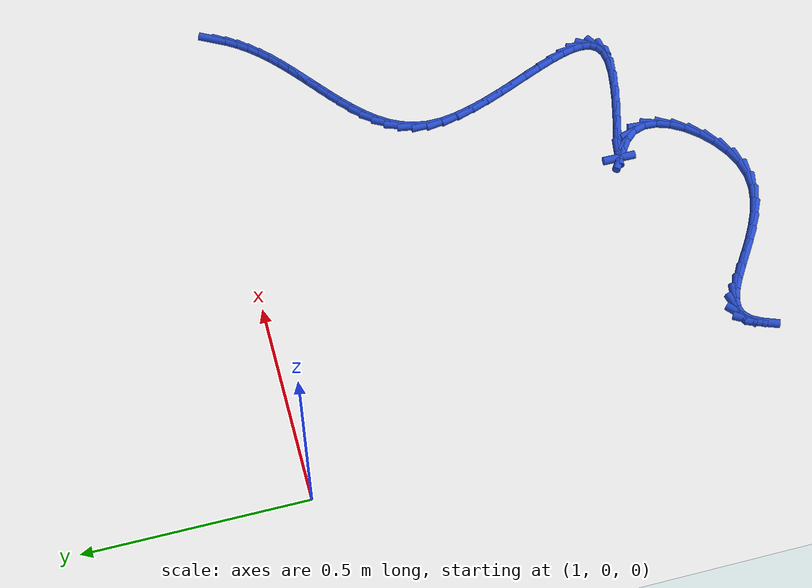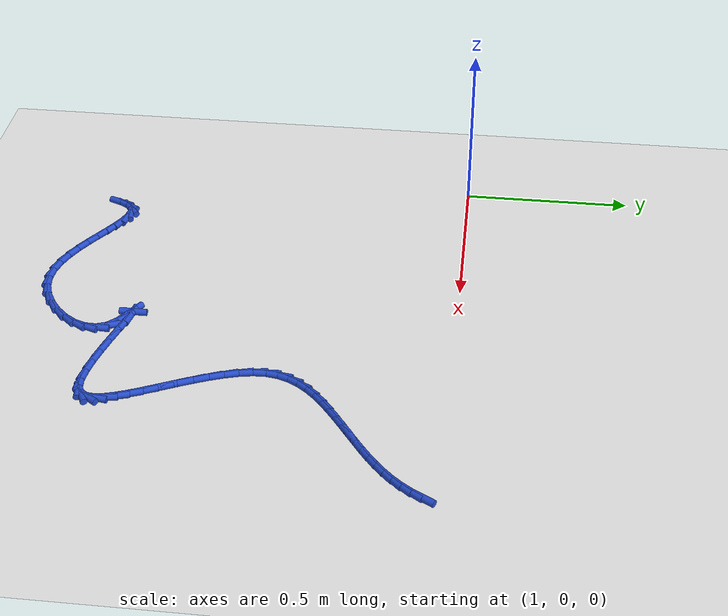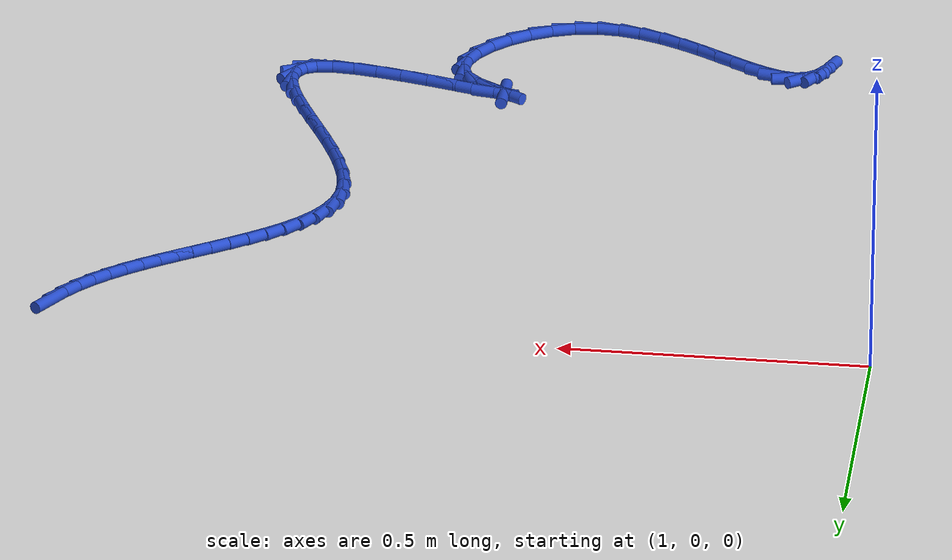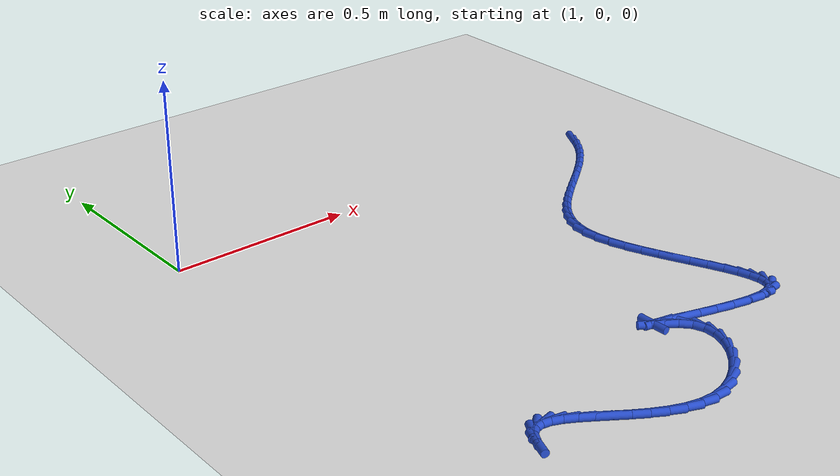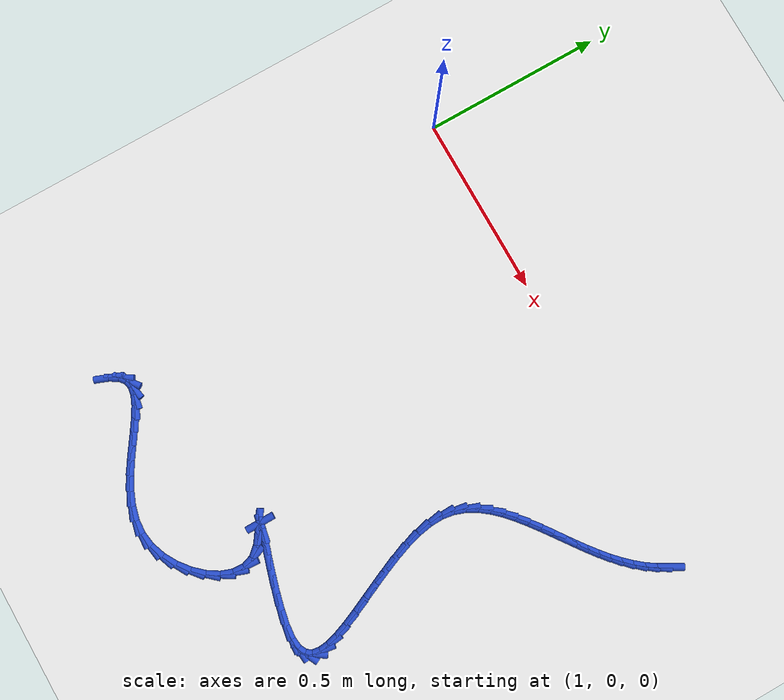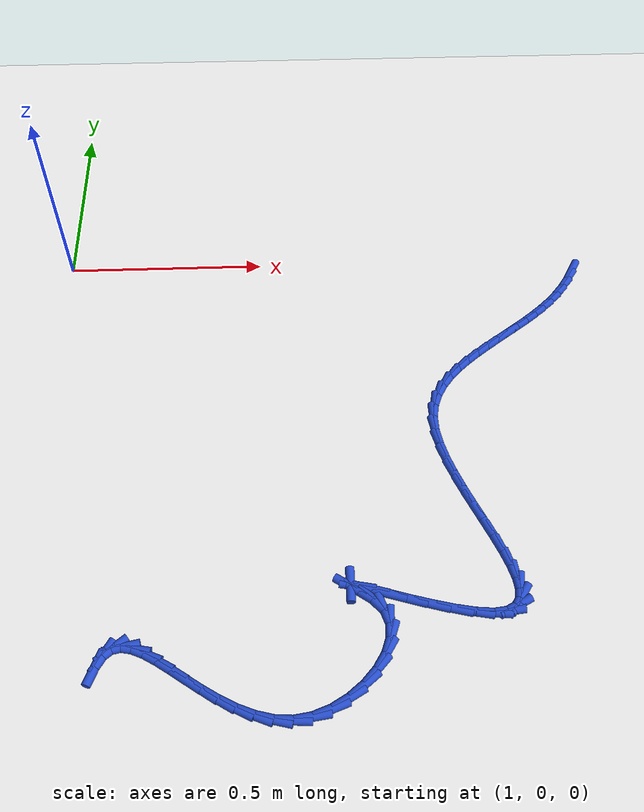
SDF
<sdf version="1.6">
 <world name="default">
  <model name="ground_plane">
   <static>1</static>
   <link name="link">
    <collision name="collision">
     <geometry><plane><normal>0 0 1</normal><size>100 100</size></plane></geometry>
     <surface><friction><ode><mu>100</mu><mu2>50</mu2></ode></friction></surface>
    </collision>
    <visual name="visual">
     <cast_shadows>0</cast_shadows>
     <geometry><plane><normal>0 0 1</normal><size>100 100</size></plane></geometry>
     <material>
      <script><uri>file://media/materials/scripts/gazebo.material</uri><name>Gazebo/WhiteGlow</name></script>
     </material>
    </visual>
   </link>
  </model>
  <model name="line">
   <link name="link_139">
    <pose>2.3235083277884403 -0.05241808262936048 0.01 0 1.57 1.0608913689887651</pose>
    <collision name="collision">
     <geometry><cylinder><radius>0.01</radius><length>0.08</length></cylinder></geometry>
    </collision>
    <visual name="visual">
     <material>
      <script><name>Gazebo/Blue</name><uri>file://media/materials/scripts/gazebo.material</uri></script>
     </material>
     <geometry><cylinder><radius>0.01</radius><length>0.08</length></cylinder></geometry>
    </visual>
   </link>
   <link name="link_140">
    <pose>2.307607664986563 -0.08085101843154464 0.01 0 1.57 0.9687450672664327</pose>
    <collision name="collision">
     <geometry><cylinder><radius>0.01</radius><length>0.08</length></cylinder></geometry>
    </collision>
    <visual name="visual">
     <material>
      <script><name>Gazebo/Blue</name><uri>file://media/materials/scripts/gazebo.material</uri></script>
     </material>
     <geometry><cylinder><radius>0.01</radius><length>0.08</length></cylinder></geometry>
    </visual>
   </link>
   <link name="link_141">
    <pose>2.2895218974615594 -0.10717089739696319 0.01 0 1.57 0.8851869438819983</pose>
    <collision name="collision">
     <geometry><cylinder><radius>0.01</radius><length>0.08</length></cylinder></geometry>
    </collision>
    <visual name="visual">
     <material>
      <script><name>Gazebo/Blue</name><uri>file://media/materials/scripts/gazebo.material</uri></script>
     </material>
     <geometry><cylinder><radius>0.01</radius><length>0.08</length></cylinder></geometry>
    </visual>
   </link>
   <link name="link_142">
    <pose>2.269491799629104 -0.131658129547973 0.01 0 1.57 0.812286196404394</pose>
    <collision name="collision">
     <geometry><cylinder><radius>0.01</radius><length>0.08</length></cylinder></geometry>
    </collision>
    <visual name="visual">
     <material>
      <script><name>Gazebo/Blue</name><uri>file://media/materials/scripts/gazebo.material</uri></script>
     </material>
     <geometry><cylinder><radius>0.01</radius><length>0.08</length></cylinder></geometry>
    </visual>
   </link>
   <link name="link_143">
    <pose>2.2477581459048723 -0.15459312490693053 0.01 0 1.57 0.7512322360215811</pose>
    <collision name="collision">
     <geometry><cylinder><radius>0.01</radius><length>0.08</length></cylinder></geometry>
    </collision>
    <visual name="visual">
     <material>
      <script><name>Gazebo/Blue</name><uri>file://media/materials/scripts/gazebo.material</uri></script>
     </material>
     <geometry><cylinder><radius>0.01</radius><length>0.08</length></cylinder></geometry>
    </visual>
   </link>
   <link name="link_144">
    <pose>2.2245617107045397 -0.1762562934961922 0.01 0 1.57 0.7024953715874301</pose>
    <collision name="collision">
     <geometry><cylinder><radius>0.01</radius><length>0.08</length></cylinder></geometry>
    </collision>
    <visual name="visual">
     <material>
      <script><name>Gazebo/Blue</name><uri>file://media/materials/scripts/gazebo.material</uri></script>
     </material>
     <geometry><cylinder><radius>0.01</radius><length>0.08</length></cylinder></geometry>
    </visual>
   </link>
   <link name="link_145">
    <pose>2.2001432684437803 -0.19692804533811437 0.01 0 1.57 0.6660631370489545</pose>
    <collision name="collision">
     <geometry><cylinder><radius>0.01</radius><length>0.08</length></cylinder></geometry>
    </collision>
    <visual name="visual">
     <material>
      <script><name>Gazebo/Blue</name><uri>file://media/materials/scripts/gazebo.material</uri></script>
     </material>
     <geometry><cylinder><radius>0.01</radius><length>0.08</length></cylinder></geometry>
    </visual>
   </link>
   <link name="link_146">
    <pose>2.1747435935382686 -0.21688879045505405 0.01 0 1.57 0.6416635138665876</pose>
    <collision name="collision">
     <geometry><cylinder><radius>0.01</radius><length>0.08</length></cylinder></geometry>
    </collision>
    <visual name="visual">
     <material>
      <script><name>Gazebo/Blue</name><uri>file://media/materials/scripts/gazebo.material</uri></script>
     </material>
     <geometry><cylinder><radius>0.01</radius><length>0.08</length></cylinder></geometry>
    </visual>
   </link>
   <link name="link_147">
    <pose>2.148603460403681 -0.2364189388693664 0.01 0 1.57 0.6289325205838758</pose>
    <collision name="collision">
     <geometry><cylinder><radius>0.01</radius><length>0.08</length></cylinder></geometry>
    </collision>
    <visual name="visual">
     <material>
      <script><name>Gazebo/Blue</name><uri>file://media/materials/scripts/gazebo.material</uri></script>
     </material>
     <geometry><cylinder><radius>0.01</radius><length>0.08</length></cylinder></geometry>
    </visual>
   </link>
   <link name="link_148">
    <pose>2.121963643455692 -0.2557989006034086 0.01 0 1.57 0.6275179319952621</pose>
    <collision name="collision">
     <geometry><cylinder><radius>0.01</radius><length>0.08</length></cylinder></geometry>
    </collision>
    <visual name="visual">
     <material>
      <script><name>Gazebo/Blue</name><uri>file://media/materials/scripts/gazebo.material</uri></script>
     </material>
     <geometry><cylinder><radius>0.01</radius><length>0.08</length></cylinder></geometry>
    </visual>
   </link>
   <link name="link_149">
    <pose>2.095064917109977 -0.275309085679537 0.01 0 1.57 0.6371265259970232</pose>
    <collision name="collision">
     <geometry><cylinder><radius>0.01</radius><length>0.08</length></cylinder></geometry>
    </collision>
    <visual name="visual">
     <material>
      <script><name>Gazebo/Blue</name><uri>file://media/materials/scripts/gazebo.material</uri></script>
     </material>
     <geometry><cylinder><radius>0.01</radius><length>0.08</length></cylinder></geometry>
    </visual>
   </link>
   <link name="link_150">
    <pose>2.06814805578221 -0.29522990412010786 0.01 0 1.57 0.6575251512200889</pose>
    <collision name="collision">
     <geometry><cylinder><radius>0.01</radius><length>0.08</length></cylinder></geometry>
    </collision>
    <visual name="visual">
     <material>
      <script><name>Gazebo/Blue</name><uri>file://media/materials/scripts/gazebo.material</uri></script>
     </material>
     <geometry><cylinder><radius>0.01</radius><length>0.08</length></cylinder></geometry>
    </visual>
   </link>
   <link name="link_151">
    <pose>2.0414538345121533 -0.3158417659408752 0.01 0 1.57 0.6905183868258894</pose>
    <collision name="collision">
     <geometry><cylinder><radius>0.01</radius><length>0.08</length></cylinder></geometry>
    </collision>
    <visual name="visual">
     <material>
      <script><name>Gazebo/Blue</name><uri>file://media/materials/scripts/gazebo.material</uri></script>
     </material>
     <geometry><cylinder><radius>0.01</radius><length>0.08</length></cylinder></geometry>
    </visual>
   </link>
   <link name="link_152">
    <pose>2.0153318845316086 -0.337423929462068 0.01 0 1.57 0.7442492436190512</pose>
    <collision name="collision">
     <geometry><cylinder><radius>0.01</radius><length>0.08</length></cylinder></geometry>
    </collision>
    <visual name="visual">
     <material>
      <script><name>Gazebo/Blue</name><uri>file://media/materials/scripts/gazebo.material</uri></script>
     </material>
     <geometry><cylinder><radius>0.01</radius><length>0.08</length></cylinder></geometry>
    </visual>
   </link>
   <link name="link_153">
    <pose>1.990544104511512 -0.3602512912257257 0.01 0 1.57 0.82271092702796</pose>
    <collision name="collision">
     <geometry><cylinder><radius>0.01</radius><length>0.08</length></cylinder></geometry>
    </collision>
    <visual name="visual">
     <material>
      <script><name>Gazebo/Blue</name><uri>file://media/materials/scripts/gazebo.material</uri></script>
     </material>
     <geometry><cylinder><radius>0.01</radius><length>0.08</length></cylinder></geometry>
    </visual>
   </link>
   <link name="link_154">
    <pose>1.967949975430083 -0.3845977153557548 0.01 0 1.57 0.9288521636080752</pose>
    <collision name="collision">
     <geometry><cylinder><radius>0.01</radius><length>0.08</length></cylinder></geometry>
    </collision>
    <visual name="visual">
     <material>
      <script><name>Gazebo/Blue</name><uri>file://media/materials/scripts/gazebo.material</uri></script>
     </material>
     <geometry><cylinder><radius>0.01</radius><length>0.08</length></cylinder></geometry>
    </visual>
   </link>
   <link name="link_155">
    <pose>1.94840897826554 -0.4107370659760622 0.01 0 1.57 1.0648280957791896</pose>
    <collision name="collision">
     <geometry><cylinder><radius>0.01</radius><length>0.08</length></cylinder></geometry>
    </collision>
    <visual name="visual">
     <material>
      <script><name>Gazebo/Blue</name><uri>file://media/materials/scripts/gazebo.material</uri></script>
     </material>
     <geometry><cylinder><radius>0.01</radius><length>0.08</length></cylinder></geometry>
    </visual>
   </link>
   <link name="link_156">
    <pose>1.9327805939961058 -0.438943207210553 0.01 0 1.57 1.2293201288129159</pose>
    <collision name="collision">
     <geometry><cylinder><radius>0.01</radius><length>0.08</length></cylinder></geometry>
    </collision>
    <visual name="visual">
     <material>
      <script><name>Gazebo/Blue</name><uri>file://media/materials/scripts/gazebo.material</uri></script>
     </material>
     <geometry><cylinder><radius>0.01</radius><length>0.08</length></cylinder></geometry>
    </visual>
   </link>
   <link name="link_157">
    <pose>1.9219243035999978 -0.46949000318313405 0.01 0 1.57 1.4145263936888954</pose>
    <collision name="collision">
     <geometry><cylinder><radius>0.01</radius><length>0.08</length></cylinder></geometry>
    </collision>
    <visual name="visual">
     <material>
      <script><name>Gazebo/Blue</name><uri>file://media/materials/scripts/gazebo.material</uri></script>
     </material>
     <geometry><cylinder><radius>0.01</radius><length>0.08</length></cylinder></geometry>
    </visual>
   </link>
   <link name="link_158">
    <pose>1.916699588055437 -0.502651318017712 0.01 0 1.57 -1.542016384939773</pose>
    <collision name="collision">
     <geometry><cylinder><radius>0.01</radius><length>0.08</length></cylinder></geometry>
    </collision>
    <visual name="visual">
     <material>
      <script><name>Gazebo/Blue</name><uri>file://media/materials/scripts/gazebo.material</uri></script>
     </material>
     <geometry><cylinder><radius>0.01</radius><length>0.08</length></cylinder></geometry>
    </visual>
   </link>
   <link name="link_159">
    <pose>1.9177342259457821 -0.5385913564448346 0.01 0 1.57 -1.3988994695609915</pose>
    <collision name="collision">
     <geometry><cylinder><radius>0.01</radius><length>0.08</length></cylinder></geometry>
    </collision>
    <visual name="visual">
     <material>
      <script><name>Gazebo/Blue</name><uri>file://media/materials/scripts/gazebo.material</uri></script>
     </material>
     <geometry><cylinder><radius>0.01</radius><length>0.08</length></cylinder></geometry>
    </visual>
   </link>
   <link name="link_160">
    <pose>1.9243798506249514 -0.5768703531248157 0.01 0 1.57 -1.2982686605355178</pose>
    <collision name="collision">
     <geometry><cylinder><radius>0.01</radius><length>0.08</length></cylinder></geometry>
    </collision>
    <visual name="visual">
     <material>
      <script><name>Gazebo/Blue</name><uri>file://media/materials/scripts/gazebo.material</uri></script>
     </material>
     <geometry><cylinder><radius>0.01</radius><length>0.08</length></cylinder></geometry>
    </visual>
   </link>
   <link name="link_161">
    <pose>1.9355511020628329 -0.6168417238397125 0.01 0 1.57 -1.2285896845688</pose>
    <collision name="collision">
     <geometry><cylinder><radius>0.01</radius><length>0.08</length></cylinder></geometry>
    </collision>
    <visual name="visual">
     <material>
      <script><name>Gazebo/Blue</name><uri>file://media/materials/scripts/gazebo.material</uri></script>
     </material>
     <geometry><cylinder><radius>0.01</radius><length>0.08</length></cylinder></geometry>
    </visual>
   </link>
   <link name="link_162">
    <pose>1.950162234839072 -0.6578587019752793 0.01 0 1.57 -1.182013682770999</pose>
    <collision name="collision">
     <geometry><cylinder><radius>0.01</radius><length>0.08</length></cylinder></geometry>
    </collision>
    <visual name="visual">
     <material>
      <script><name>Gazebo/Blue</name><uri>file://media/materials/scripts/gazebo.material</uri></script>
     </material>
     <geometry><cylinder><radius>0.01</radius><length>0.08</length></cylinder></geometry>
    </visual>
   </link>
   <link name="link_163">
    <pose>1.9671275035333118 -0.69927452091727 0.01 0 1.57 -1.1538543177570952</pose>
    <collision name="collision">
     <geometry><cylinder><radius>0.01</radius><length>0.08</length></cylinder></geometry>
    </collision>
    <visual name="visual">
     <material>
      <script><name>Gazebo/Blue</name><uri>file://media/materials/scripts/gazebo.material</uri></script>
     </material>
     <geometry><cylinder><radius>0.01</radius><length>0.08</length></cylinder></geometry>
    </visual>
   </link>
   <link name="link_164">
    <pose>1.9853611627251975 -0.7404424140514398 0.01 0 1.57 -1.1419012735611156</pose>
    <collision name="collision">
     <geometry><cylinder><radius>0.01</radius><length>0.08</length></cylinder></geometry>
    </collision>
    <visual name="visual">
     <material>
      <script><name>Gazebo/Blue</name><uri>file://media/materials/scripts/gazebo.material</uri></script>
     </material>
     <geometry><cylinder><radius>0.01</radius><length>0.08</length></cylinder></geometry>
    </visual>
   </link>
   <link name="link_165">
    <pose>2.0037774669943724 -0.7807156147635402 0.01 0 1.57 -1.1461420305665937</pose>
    <collision name="collision">
     <geometry><cylinder><radius>0.01</radius><length>0.08</length></cylinder></geometry>
    </collision>
    <visual name="visual">
     <material>
      <script><name>Gazebo/Blue</name><uri>file://media/materials/scripts/gazebo.material</uri></script>
     </material>
     <geometry><cylinder><radius>0.01</radius><length>0.08</length></cylinder></geometry>
    </visual>
   </link>
   <link name="link_166">
    <pose>2.021290670920482 -0.8194473564393265 0.01 0 1.57 -1.1690795026625806</pose>
    <collision name="collision">
     <geometry><cylinder><radius>0.01</radius><length>0.08</length></cylinder></geometry>
    </collision>
    <visual name="visual">
     <material>
      <script><name>Gazebo/Blue</name><uri>file://media/materials/scripts/gazebo.material</uri></script>
     </material>
     <geometry><cylinder><radius>0.01</radius><length>0.08</length></cylinder></geometry>
    </visual>
   </link>
   <link name="link_167">
    <pose>2.0368150290831695 -0.8559908724645524 0.01 0 1.57 -1.2170006918001388</pose>
    <collision name="collision">
     <geometry><cylinder><radius>0.01</radius><length>0.08</length></cylinder></geometry>
    </collision>
    <visual name="visual">
     <material>
      <script><name>Gazebo/Blue</name><uri>file://media/materials/scripts/gazebo.material</uri></script>
     </material>
     <geometry><cylinder><radius>0.01</radius><length>0.08</length></cylinder></geometry>
    </visual>
   </link>
   <link name="link_168">
    <pose>2.04926479606208 -0.8896993962249723 0.01 0 1.57 -1.3031355152336337</pose>
    <collision name="collision">
     <geometry><cylinder><radius>0.01</radius><length>0.08</length></cylinder></geometry>
    </collision>
    <visual name="visual">
     <material>
      <script><name>Gazebo/Blue</name><uri>file://media/materials/scripts/gazebo.material</uri></script>
     </material>
     <geometry><cylinder><radius>0.01</radius><length>0.08</length></cylinder></geometry>
    </visual>
   </link>
   <link name="link_169">
    <pose>2.0575542264368574 -0.9199261611063401 0.01 0 1.57 -1.4547093715500155</pose>
    <collision name="collision">
     <geometry><cylinder><radius>0.01</radius><length>0.08</length></cylinder></geometry>
    </collision>
    <visual name="visual">
     <material>
      <script><name>Gazebo/Blue</name><uri>file://media/materials/scripts/gazebo.material</uri></script>
     </material>
     <geometry><cylinder><radius>0.01</radius><length>0.08</length></cylinder></geometry>
    </visual>
   </link>
   <link name="link_170">
    <pose>2.0605975747871463 -0.9460244004944096 0.01 0 1.57 1.417779335416095</pose>
    <collision name="collision">
     <geometry><cylinder><radius>0.01</radius><length>0.08</length></cylinder></geometry>
    </collision>
    <visual name="visual">
     <material>
      <script><name>Gazebo/Blue</name><uri>file://media/materials/scripts/gazebo.material</uri></script>
     </material>
     <geometry><cylinder><radius>0.01</radius><length>0.08</length></cylinder></geometry>
    </visual>
   </link>
   <link name="link_171">
    <pose>2.0573090956925912 -0.9673473477749348 0.01 0 1.57 0.9782161697975983</pose>
    <collision name="collision">
     <geometry><cylinder><radius>0.01</radius><length>0.08</length></cylinder></geometry>
    </collision>
    <visual name="visual">
     <material>
      <script><name>Gazebo/Blue</name><uri>file://media/materials/scripts/gazebo.material</uri></script>
     </material>
     <geometry><cylinder><radius>0.01</radius><length>0.08</length></cylinder></geometry>
    </visual>
   </link>
   <link name="link_172">
    <pose>2.0466030437328366 -0.9832482363336702 0.01 0 1.57 0.4730721719269025</pose>
    <collision name="collision">
     <geometry><cylinder><radius>0.01</radius><length>0.08</length></cylinder></geometry>
    </collision>
    <visual name="visual">
     <material>
      <script><name>Gazebo/Blue</name><uri>file://media/materials/scripts/gazebo.material</uri></script>
     </material>
     <geometry><cylinder><radius>0.01</radius><length>0.08</length></cylinder></geometry>
    </visual>
   </link>
   <link name="link_173">
    <pose>2.0273936734875257 -0.9930802995563695 0.01 0 1.57 0.10846091833959497</pose>
    <collision name="collision">
     <geometry><cylinder><radius>0.01</radius><length>0.08</length></cylinder></geometry>
    </collision>
    <visual name="visual">
     <material>
      <script><name>Gazebo/Blue</name><uri>file://media/materials/scripts/gazebo.material</uri></script>
     </material>
     <geometry><cylinder><radius>0.01</radius><length>0.08</length></cylinder></geometry>
    </visual>
   </link>
   <link name="link_174">
    <pose>1.9986246261651441 -0.9962129102645471 0.01 0 1.57 -0.08772155459176666</pose>
    <collision name="collision">
     <geometry><cylinder><radius>0.01</radius><length>0.08</length></cylinder></geometry>
    </collision>
    <visual name="visual">
     <material>
      <script><name>Gazebo/Blue</name><uri>file://media/materials/scripts/gazebo.material</uri></script>
     </material>
     <geometry><cylinder><radius>0.01</radius><length>0.08</length></cylinder></geometry>
    </visual>
   </link>
   <link name="link_175">
    <pose>1.960830086901908 -0.9928889841990568 0.01 0 1.57 -0.18537828088324979</pose>
    <collision name="collision">
     <geometry><cylinder><radius>0.01</radius><length>0.08</length></cylinder></geometry>
    </collision>
    <visual name="visual">
     <material>
      <script><name>Gazebo/Blue</name><uri>file://media/materials/scripts/gazebo.material</uri></script>
     </material>
     <geometry><cylinder><radius>0.01</radius><length>0.08</length></cylinder></geometry>
    </visual>
   </link>
   <link name="link_176">
    <pose>1.9169151227975132 -0.9846535496143866 0.01 0 1.57 -0.24019058346360495</pose>
    <collision name="collision">
     <geometry><cylinder><radius>0.01</radius><length>0.08</length></cylinder></geometry>
    </collision>
    <visual name="visual">
     <material>
      <script><name>Gazebo/Blue</name><uri>file://media/materials/scripts/gazebo.material</uri></script>
     </material>
     <geometry><cylinder><radius>0.01</radius><length>0.08</length></cylinder></geometry>
    </visual>
   </link>
   <link name="link_177">
    <pose>1.8699780934903545 -0.9731577929952986 0.01 0 1.57 -0.272689812103999</pose>
    <collision name="collision">
     <geometry><cylinder><radius>0.01</radius><length>0.08</length></cylinder></geometry>
    </collision>
    <visual name="visual">
     <material>
      <script><name>Gazebo/Blue</name><uri>file://media/materials/scripts/gazebo.material</uri></script>
     </material>
     <geometry><cylinder><radius>0.01</radius><length>0.08</length></cylinder></geometry>
    </visual>
   </link>
   <link name="link_178">
    <pose>1.823117358618826 -0.9600529008265544 0.01 0 1.57 -0.2905538839794773</pose>
    <collision name="collision">
     <geometry><cylinder><radius>0.01</radius><length>0.08</length></cylinder></geometry>
    </collision>
    <visual name="visual">
     <material>
      <script><name>Gazebo/Blue</name><uri>file://media/materials/scripts/gazebo.material</uri></script>
     </material>
     <geometry><cylinder><radius>0.01</radius><length>0.08</length></cylinder></geometry>
    </visual>
   </link>
   <link name="link_179">
    <pose>1.7794312778213228 -0.9469900595929162 0.01 0 1.57 -0.2950253633241439</pose>
    <collision name="collision">
     <geometry><cylinder><radius>0.01</radius><length>0.08</length></cylinder></geometry>
    </collision>
    <visual name="visual">
     <material>
      <script><name>Gazebo/Blue</name><uri>file://media/materials/scripts/gazebo.material</uri></script>
     </material>
     <geometry><cylinder><radius>0.01</radius><length>0.08</length></cylinder></geometry>
    </visual>
   </link>
   <link name="link_180">
    <pose>1.7420182107362385 -0.9356204557791457 0.01 0 1.57 -0.2787370279432986</pose>
    <collision name="collision">
     <geometry><cylinder><radius>0.01</radius><length>0.08</length></cylinder></geometry>
    </collision>
    <visual name="visual">
     <material>
      <script><name>Gazebo/Blue</name><uri>file://media/materials/scripts/gazebo.material</uri></script>
     </material>
     <geometry><cylinder><radius>0.01</radius><length>0.08</length></cylinder></geometry>
    </visual>
   </link>
   <link name="link_181">
    <pose>1.7139765170019663 -0.9275952758700039 0.01 0 1.57 -0.19215248226104972</pose>
    <collision name="collision">
     <geometry><cylinder><radius>0.01</radius><length>0.08</length></cylinder></geometry>
    </collision>
    <visual name="visual">
     <material>
      <script><name>Gazebo/Blue</name><uri>file://media/materials/scripts/gazebo.material</uri></script>
     </material>
     <geometry><cylinder><radius>0.01</radius><length>0.08</length></cylinder></geometry>
    </visual>
   </link>
   <link name="link_182">
    <pose>1.6984045562569028 -0.9245657063502539 0.01 0 1.57 1.569726967418893</pose>
    <collision name="collision">
     <geometry><cylinder><radius>0.01</radius><length>0.08</length></cylinder></geometry>
    </collision>
    <visual name="visual">
     <material>
      <script><name>Gazebo/Blue</name><uri>file://media/materials/scripts/gazebo.material</uri></script>
     </material>
     <geometry><cylinder><radius>0.01</radius><length>0.08</length></cylinder></geometry>
    </visual>
   </link>
   <link name="link_183">
    <pose>1.6984006881394418 -0.928182933704657 0.01 0 1.57 -0.5798074621000031</pose>
    <collision name="collision">
     <geometry><cylinder><radius>0.01</radius><length>0.08</length></cylinder></geometry>
    </collision>
    <visual name="visual">
     <material>
      <script><name>Gazebo/Blue</name><uri>file://media/materials/scripts/gazebo.material</uri></script>
     </material>
     <geometry><cylinder><radius>0.01</radius><length>0.08</length></cylinder></geometry>
    </visual>
   </link>
   <link name="link_184">
    <pose>1.7164029461744406 -0.9399724918676803 0.01 0 1.57 -0.6056490479947946</pose>
    <collision name="collision">
     <geometry><cylinder><radius>0.01</radius><length>0.08</length></cylinder></geometry>
    </collision>
    <visual name="visual">
     <material>
      <script><name>Gazebo/Blue</name><uri>file://media/materials/scripts/gazebo.material</uri></script>
     </material>
     <geometry><cylinder><radius>0.01</radius><length>0.08</length></cylinder></geometry>
    </visual>
   </link>
   <link name="link_185">
    <pose>1.7446232865579212 -0.9595140085472446 0.01 0 1.57 -0.8357814998733368</pose>
    <collision name="collision">
     <geometry><cylinder><radius>0.01</radius><length>0.08</length></cylinder></geometry>
    </collision>
    <visual name="visual">
     <material>
      <script><name>Gazebo/Blue</name><uri>file://media/materials/scripts/gazebo.material</uri></script>
     </material>
     <geometry><cylinder><radius>0.01</radius><length>0.08</length></cylinder></geometry>
    </visual>
   </link>
   <link name="link_186">
    <pose>1.767538309861744 -0.9848627826890575 0.01 0 1.57 -1.2408474138096923</pose>
    <collision name="collision">
     <geometry><cylinder><radius>0.01</radius><length>0.08</length></cylinder></geometry>
    </collision>
    <visual name="visual">
     <material>
      <script><name>Gazebo/Blue</name><uri>file://media/materials/scripts/gazebo.material</uri></script>
     </material>
     <geometry><cylinder><radius>0.01</radius><length>0.08</length></cylinder></geometry>
    </visual>
   </link>
   <link name="link_187">
    <pose>1.777598800489813 -1.0142392408143004 0.01 0 1.57 1.5199213211936031</pose>
    <collision name="collision">
     <geometry><cylinder><radius>0.01</radius><length>0.08</length></cylinder></geometry>
    </collision>
    <visual name="visual">
     <material>
      <script><name>Gazebo/Blue</name><uri>file://media/materials/scripts/gazebo.material</uri></script>
     </material>
     <geometry><cylinder><radius>0.01</radius><length>0.08</length></cylinder></geometry>
    </visual>
   </link>
   <link name="link_188">
    <pose>1.7759773117262356 -1.0460837498181963 0.01 0 1.57 1.2276034444466328</pose>
    <collision name="collision">
     <geometry><cylinder><radius>0.01</radius><length>0.08</length></cylinder></geometry>
    </collision>
    <visual name="visual">
     <material>
      <script><name>Gazebo/Blue</name><uri>file://media/materials/scripts/gazebo.material</uri></script>
     </material>
     <geometry><cylinder><radius>0.01</radius><length>0.08</length></cylinder></geometry>
    </visual>
   </link>
   <link name="link_189">
    <pose>1.7642697832313776 -1.078847353301488 0.01 0 1.57 1.009649048431927</pose>
    <collision name="collision">
     <geometry><cylinder><radius>0.01</radius><length>0.08</length></cylinder></geometry>
    </collision>
    <visual name="visual">
     <material>
      <script><name>Gazebo/Blue</name><uri>file://media/materials/scripts/gazebo.material</uri></script>
     </material>
     <geometry><cylinder><radius>0.01</radius><length>0.08</length></cylinder></geometry>
    </visual>
   </link>
   <link name="link_190">
    <pose>1.7440721546656006 -1.1109810948649201 0.01 0 1.57 0.835545380269472</pose>
    <collision name="collision">
     <geometry><cylinder><radius>0.01</radius><length>0.08</length></cylinder></geometry>
    </collision>
    <visual name="visual">
     <material>
      <script><name>Gazebo/Blue</name><uri>file://media/materials/scripts/gazebo.material</uri></script>
     </material>
     <geometry><cylinder><radius>0.01</radius><length>0.08</length></cylinder></geometry>
    </visual>
   </link>
   <link name="link_191">
    <pose>1.716980365689271 -1.1409360181092354 0.01 0 1.57 0.6806455117577674</pose>
    <collision name="collision">
     <geometry><cylinder><radius>0.01</radius><length>0.08</length></cylinder></geometry>
    </collision>
    <visual name="visual">
     <material>
      <script><name>Gazebo/Blue</name><uri>file://media/materials/scripts/gazebo.material</uri></script>
     </material>
     <geometry><cylinder><radius>0.01</radius><length>0.08</length></cylinder></geometry>
    </visual>
   </link>
   <link name="link_192">
    <pose>1.6845903559627515 -1.1671631666351776 0.01 0 1.57 0.5259338660509275</pose>
    <collision name="collision">
     <geometry><cylinder><radius>0.01</radius><length>0.08</length></cylinder></geometry>
    </collision>
    <visual name="visual">
     <material>
      <script><name>Gazebo/Blue</name><uri>file://media/materials/scripts/gazebo.material</uri></script>
     </material>
     <geometry><cylinder><radius>0.01</radius><length>0.08</length></cylinder></geometry>
    </visual>
   </link>
   <link name="link_193">
    <pose>1.6484980651464065 -1.1881135840434904 0.01 0 1.57 0.35417809797576333</pose>
    <collision name="collision">
     <geometry><cylinder><radius>0.01</radius><length>0.08</length></cylinder></geometry>
    </collision>
    <visual name="visual">
     <material>
      <script><name>Gazebo/Blue</name><uri>file://media/materials/scripts/gazebo.material</uri></script>
     </material>
     <geometry><cylinder><radius>0.01</radius><length>0.08</length></cylinder></geometry>
    </visual>
   </link>
   <link name="link_194">
    <pose>1.610299432900599 -1.2022383139349178 0.01 0 1.57 0.14909640222218418</pose>
    <collision name="collision">
     <geometry><cylinder><radius>0.01</radius><length>0.08</length></cylinder></geometry>
    </collision>
    <visual name="visual">
     <material>
      <script><name>Gazebo/Blue</name><uri>file://media/materials/scripts/gazebo.material</uri></script>
     </material>
     <geometry><cylinder><radius>0.01</radius><length>0.08</length></cylinder></geometry>
    </visual>
   </link>
   <link name="link_195">
    <pose>1.571559083734972 -1.2080575446447137 0.01 0 1.57 -0.06453778460781946</pose>
    <collision name="collision">
     <geometry><cylinder><radius>0.01</radius><length>0.08</length></cylinder></geometry>
    </collision>
    <visual name="visual">
     <material>
      <script><name>Gazebo/Blue</name><uri>file://media/materials/scripts/gazebo.material</uri></script>
     </material>
     <geometry><cylinder><radius>0.01</radius><length>0.08</length></cylinder></geometry>
    </visual>
   </link>
   <link name="link_196">
    <pose>1.5331690832679314 -1.205576493476664 0.01 0 1.57 -0.24245359494446383</pose>
    <collision name="collision">
     <geometry><cylinder><radius>0.01</radius><length>0.08</length></cylinder></geometry>
    </collision>
    <visual name="visual">
     <material>
      <script><name>Gazebo/Blue</name><uri>file://media/materials/scripts/gazebo.material</uri></script>
     </material>
     <geometry><cylinder><radius>0.01</radius><length>0.08</length></cylinder></geometry>
    </visual>
   </link>
   <link name="link_197">
    <pose>1.4953744116881031 -1.1962291605829671 0.01 0 1.57 -0.37886165691372464</pose>
    <collision name="collision">
     <geometry><cylinder><radius>0.01</radius><length>0.08</length></cylinder></geometry>
    </collision>
    <visual name="visual">
     <material>
      <script><name>Gazebo/Blue</name><uri>file://media/materials/scripts/gazebo.material</uri></script>
     </material>
     <geometry><cylinder><radius>0.01</radius><length>0.08</length></cylinder></geometry>
    </visual>
   </link>
   <link name="link_198">
    <pose>1.4583938311067988 -1.1815074363687317 0.01 0 1.57 -0.4775773957435156</pose>
    <collision name="collision">
     <geometry><cylinder><radius>0.01</radius><length>0.08</length></cylinder></geometry>
    </collision>
    <visual name="visual">
     <material>
      <script><name>Gazebo/Blue</name><uri>file://media/materials/scripts/gazebo.material</uri></script>
     </material>
     <geometry><cylinder><radius>0.01</radius><length>0.08</length></cylinder></geometry>
    </visual>
   </link>
   <link name="link_199">
    <pose>1.4224461036353278 -1.1629032112390651 0.01 0 1.57 -0.5441656658751763</pose>
    <collision name="collision">
     <geometry><cylinder><radius>0.01</radius><length>0.08</length></cylinder></geometry>
    </collision>
    <visual name="visual">
     <material>
      <script><name>Gazebo/Blue</name><uri>file://media/materials/scripts/gazebo.material</uri></script>
     </material>
     <geometry><cylinder><radius>0.01</radius><length>0.08</length></cylinder></geometry>
    </visual>
   </link>
   <link name="link_200">
    <pose>1.3877499913850033 -1.1419083755990764 0.01 0 1.57 -0.5826298725189001</pose>
    <collision name="collision">
     <geometry><cylinder><radius>0.01</radius><length>0.08</length></cylinder></geometry>
    </collision>
    <visual name="visual">
     <material>
      <script><name>Gazebo/Blue</name><uri>file://media/materials/scripts/gazebo.material</uri></script>
     </material>
     <geometry><cylinder><radius>0.01</radius><length>0.08</length></cylinder></geometry>
    </visual>
   </link>
   <link name="link_201">
    <pose>1.3545242564671358 -1.1200148198538744 0.01 0 1.57 -0.5940367991281243</pose>
    <collision name="collision">
     <geometry><cylinder><radius>0.01</radius><length>0.08</length></cylinder></geometry>
    </collision>
    <visual name="visual">
     <material>
      <script><name>Gazebo/Blue</name><uri>file://media/materials/scripts/gazebo.material</uri></script>
     </material>
     <geometry><cylinder><radius>0.01</radius><length>0.08</length></cylinder></geometry>
    </visual>
   </link>
   <link name="link_202">
    <pose>1.3229876609930369 -1.0987144344085664 0.01 0 1.57 -0.5753465483371644</pose>
    <collision name="collision">
     <geometry><cylinder><radius>0.01</radius><length>0.08</length></cylinder></geometry>
    </collision>
    <visual name="visual">
     <material>
      <script><name>Gazebo/Blue</name><uri>file://media/materials/scripts/gazebo.material</uri></script>
     </material>
     <geometry><cylinder><radius>0.01</radius><length>0.08</length></cylinder></geometry>
    </visual>
   </link>
   <link name="link_203">
    <pose>1.2933589670740169 -1.079499109668261 0.01 0 1.57 -0.5170309707716666</pose>
    <collision name="collision">
     <geometry><cylinder><radius>0.01</radius><length>0.08</length></cylinder></geometry>
    </collision>
    <visual name="visual">
     <material>
      <script><name>Gazebo/Blue</name><uri>file://media/materials/scripts/gazebo.material</uri></script>
     </material>
     <geometry><cylinder><radius>0.01</radius><length>0.08</length></cylinder></geometry>
    </visual>
   </link>
   <link name="link_204">
    <pose>1.265856936821388 -1.0638607360380667 0.01 0 1.57 -0.397754976921214</pose>
    <collision name="collision">
     <geometry><cylinder><radius>0.01</radius><length>0.08</length></cylinder></geometry>
    </collision>
    <visual name="visual">
     <material>
      <script><name>Gazebo/Blue</name><uri>file://media/materials/scripts/gazebo.material</uri></script>
     </material>
     <geometry><cylinder><radius>0.01</radius><length>0.08</length></cylinder></geometry>
    </visual>
   </link>
   <link name="link_205">
    <pose>1.2407003323464603 -1.0532912039230915 0.01 0 1.57 -0.17561225406536984</pose>
    <collision name="collision">
     <geometry><cylinder><radius>0.01</radius><length>0.08</length></cylinder></geometry>
    </collision>
    <visual name="visual">
     <material>
      <script><name>Gazebo/Blue</name><uri>file://media/materials/scripts/gazebo.material</uri></script>
     </material>
     <geometry><cylinder><radius>0.01</radius><length>0.08</length></cylinder></geometry>
    </visual>
   </link>
   <link name="link_206">
    <pose>1.2181079157605454 -1.0492824037284438 0.01 0 1.57 0.20136914916608104</pose>
    <collision name="collision">
     <geometry><cylinder><radius>0.01</radius><length>0.08</length></cylinder></geometry>
    </collision>
    <visual name="visual">
     <material>
      <script><name>Gazebo/Blue</name><uri>file://media/materials/scripts/gazebo.material</uri></script>
     </material>
     <geometry><cylinder><radius>0.01</radius><length>0.08</length></cylinder></geometry>
    </visual>
   </link>
   <link name="link_207">
    <pose>1.198298449174955 -1.0533262258592322 0.01 0 1.57 0.6798759302574068</pose>
    <collision name="collision">
     <geometry><cylinder><radius>0.01</radius><length>0.08</length></cylinder></geometry>
    </collision>
    <visual name="visual">
     <material>
      <script><name>Gazebo/Blue</name><uri>file://media/materials/scripts/gazebo.material</uri></script>
     </material>
     <geometry><cylinder><radius>0.01</radius><length>0.08</length></cylinder></geometry>
    </visual>
   </link>
   <link name="link_208">
    <pose>1.1814906943091652 -1.0669145593651699 0.01 0 1.57 1.0420446573375137</pose>
    <collision name="collision">
     <geometry><cylinder><radius>0.01</radius><length>0.08</length></cylinder></geometry>
    </collision>
    <visual name="visual">
     <material>
      <script><name>Gazebo/Blue</name><uri>file://media/materials/scripts/gazebo.material</uri></script>
     </material>
     <geometry><cylinder><radius>0.01</radius><length>0.08</length></cylinder></geometry>
    </visual>
   </link>
   <link name="link_209">
    <pose>1.1676387590484831 -1.0906238279868055 0.01 0 1.57 1.2010328020732108</pose>
    <collision name="collision">
     <geometry><cylinder><radius>0.01</radius><length>0.08</length></cylinder></geometry>
    </collision>
    <visual name="visual">
     <material>
      <script><name>Gazebo/Blue</name><uri>file://media/materials/scripts/gazebo.material</uri></script>
     </material>
     <geometry><cylinder><radius>0.01</radius><length>0.08</length></cylinder></geometry>
    </visual>
   </link>
  </model>
 </world>
</sdf>
